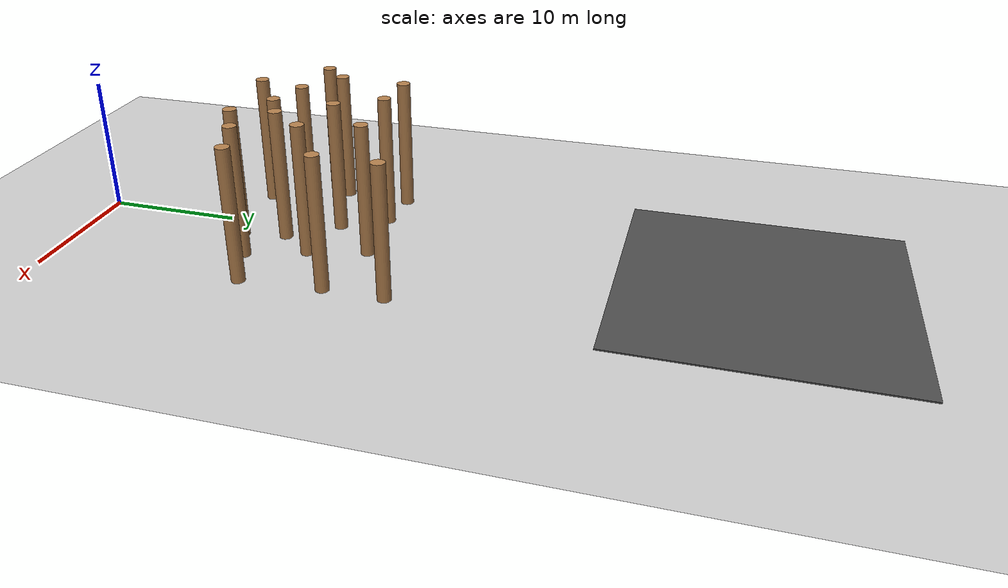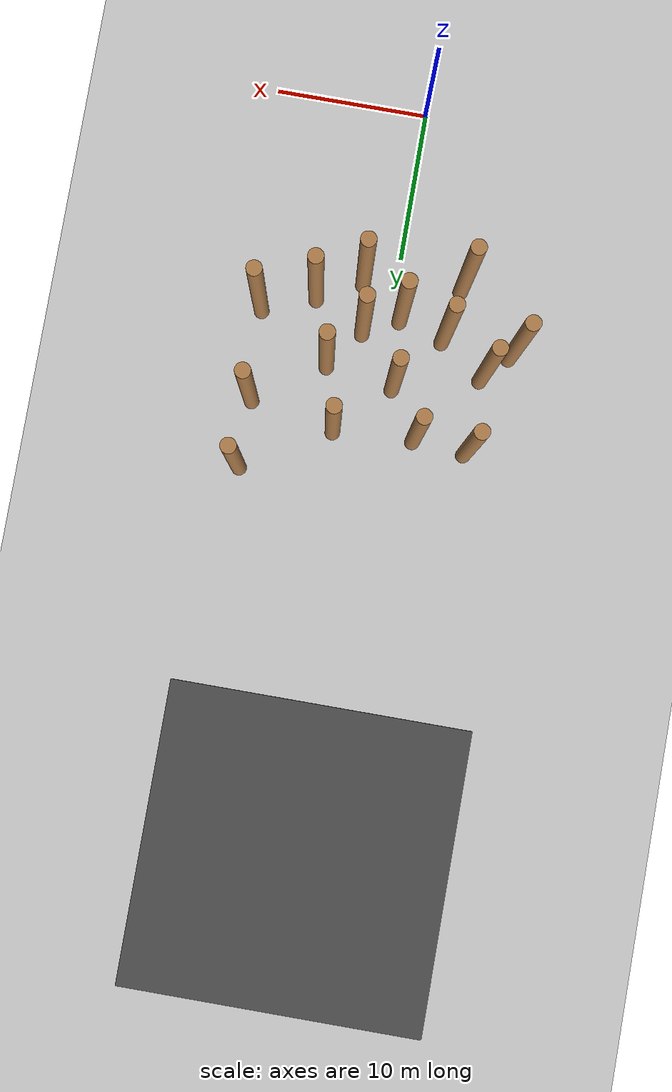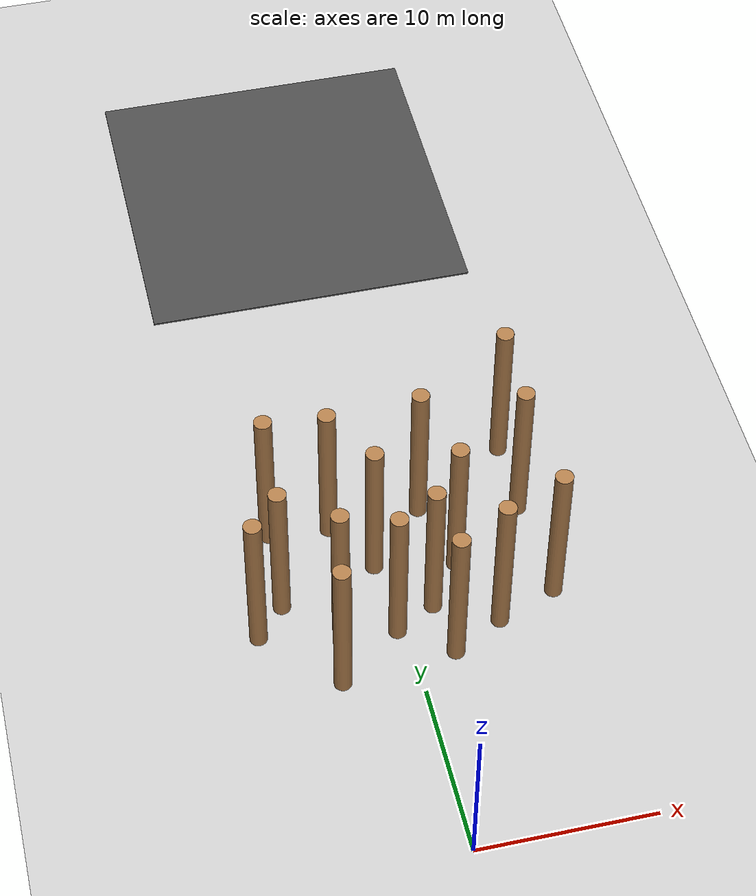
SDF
<sdf version="1.6">
 <world name="default">
  <model name="ground_plane">
   <static>1</static>
   <link name="link">
    <collision name="collision">
     <geometry><plane><normal>0 0 1</normal><size>100 100</size></plane></geometry>
     <surface><friction><ode><mu>100</mu><mu2>50</mu2></ode></friction></surface>
    </collision>
    <visual name="visual">
     <cast_shadows>0</cast_shadows>
     <geometry><plane><normal>0 0 1</normal><size>100 100</size></plane></geometry>
     <material>
      <script><uri>file://media/materials/scripts/gazebo.material</uri><name>Gazebo/Grey</name></script>
     </material>
    </visual>
   </link>
  </model>
  <model name="train">
   <link name="link_0_clone_0_clone">
    <pose>0.652107 -0.074082 0.043478 0 -0 0</pose>
    <inertial>
     <mass>1000</mass>
     <inertia><ixx>0.145833</ixx><ixy>0</ixy><ixz>0</ixz><iyy>0.145833</iyy><iyz>0</iyz><izz>0.125</izz></inertia>
    </inertial>
    <visual name="visual">
     <pose>0 0 4.5 0 -0 0</pose>
     <geometry><cylinder><radius>0.5</radius><length>10</length></cylinder></geometry>
     <material>
      <lighting>1</lighting>
      <script><uri>file://media/materials/scripts/gazebo.material</uri><name>Gazebo/WoodFloor</name></script>
      <ambient>0.3 0.3 0.3 1</ambient>
      <diffuse>0.7 0.7 0.7 1</diffuse>
      <specular>0.01 0.01 0.01 1</specular>
      <emissive>0 0 0 1</emissive>
      <shader type="vertex"><normal_map>__default__</normal_map></shader>
     </material>
    </visual>
    <collision name="collision">
     <pose>0 0 4.5 0 -0 0</pose>
     <geometry><cylinder><radius>0.5</radius><length>10</length></cylinder></geometry>
     <surface>
      <friction>
       <ode><mu>1</mu><mu2>1</mu2><fdir1>0 0 0</fdir1><slip1>0</slip1><slip2>0</slip2></ode>
       <torsional>
        <coefficient>1</coefficient>
        <patch_radius>0</patch_radius>
        <surface_radius>0</surface_radius>
        <use_patch_radius>1</use_patch_radius>
        <ode><slip>0</slip></ode>
       </torsional>
      </friction>
      <bounce><restitution_coefficient>0</restitution_coefficient><threshold>1e+06</threshold></bounce>
      <contact>
       <collide_without_contact>0</collide_without_contact>
       <collide_without_contact_bitmask>1</collide_without_contact_bitmask>
       <collide_bitmask>1</collide_bitmask>
       <ode>
        <soft_cfm>0</soft_cfm>
        <soft_erp>0.2</soft_erp>
        <kp>1e+13</kp>
        <kd>1</kd>
        <max_vel>0.01</max_vel>
        <min_depth>0</min_depth>
       </ode>
       <bullet>
        <split_impulse>1</split_impulse>
        <split_impulse_penetration_threshold>-0.01</split_impulse_penetration_threshold>
        <soft_cfm>0</soft_cfm>
        <soft_erp>0.2</soft_erp>
        <kp>1e+13</kp>
        <kd>1</kd>
       </bullet>
      </contact>
     </surface>
    </collision>
   </link>
   <link name="link_0_clone_0_clone_11_clone_2">
    <pose>6.33865 -0.592893 0.043478 0 -0 3e-06</pose>
    <inertial>
     <mass>1000</mass>
     <inertia><ixx>0.145833</ixx><ixy>0</ixy><ixz>0</ixz><iyy>0.145833</iyy><iyz>0</iyz><izz>0.125</izz></inertia>
    </inertial>
    <visual name="visual">
     <pose>0 0 4.5 0 -0 0</pose>
     <geometry><cylinder><radius>0.5</radius><length>10</length></cylinder></geometry>
     <material>
      <lighting>1</lighting>
      <script><uri>file://media/materials/scripts/gazebo.material</uri><name>Gazebo/WoodFloor</name></script>
      <ambient>0.3 0.3 0.3 1</ambient>
      <diffuse>0.7 0.7 0.7 1</diffuse>
      <specular>0.01 0.01 0.01 1</specular>
      <emissive>0 0 0 1</emissive>
      <shader type="vertex"><normal_map>__default__</normal_map></shader>
     </material>
    </visual>
    <collision name="collision">
     <pose>0 0 4.5 0 -0 0</pose>
     <geometry><cylinder><radius>0.5</radius><length>10</length></cylinder></geometry>
     <surface>
      <friction>
       <ode><mu>1</mu><mu2>1</mu2><fdir1>0 0 0</fdir1><slip1>0</slip1><slip2>0</slip2></ode>
       <torsional>
        <coefficient>1</coefficient>
        <patch_radius>0</patch_radius>
        <surface_radius>0</surface_radius>
        <use_patch_radius>1</use_patch_radius>
        <ode><slip>0</slip></ode>
       </torsional>
      </friction>
      <bounce><restitution_coefficient>0</restitution_coefficient><threshold>1e+06</threshold></bounce>
      <contact>
       <collide_without_contact>0</collide_without_contact>
       <collide_without_contact_bitmask>1</collide_without_contact_bitmask>
       <collide_bitmask>1</collide_bitmask>
       <ode>
        <soft_cfm>0</soft_cfm>
        <soft_erp>0.2</soft_erp>
        <kp>1e+13</kp>
        <kd>1</kd>
        <max_vel>0.01</max_vel>
        <min_depth>0</min_depth>
       </ode>
       <bullet>
        <split_impulse>1</split_impulse>
        <split_impulse_penetration_threshold>-0.01</split_impulse_penetration_threshold>
        <soft_cfm>0</soft_cfm>
        <soft_erp>0.2</soft_erp>
        <kp>1e+13</kp>
        <kd>1</kd>
       </bullet>
      </contact>
     </surface>
    </collision>
   </link>
   <link name="link_0_clone_0_clone_11_clone_25">
    <pose>9.78289 0.753236 0.043478 0 -0 3e-06</pose>
    <inertial>
     <mass>1000</mass>
     <inertia><ixx>0.145833</ixx><ixy>0</ixy><ixz>0</ixz><iyy>0.145833</iyy><iyz>0</iyz><izz>0.125</izz></inertia>
    </inertial>
    <visual name="visual">
     <pose>0 0 4.5 0 -0 0</pose>
     <geometry><cylinder><radius>0.5</radius><length>10</length></cylinder></geometry>
     <material>
      <lighting>1</lighting>
      <script><uri>file://media/materials/scripts/gazebo.material</uri><name>Gazebo/WoodFloor</name></script>
      <ambient>0.3 0.3 0.3 1</ambient>
      <diffuse>0.7 0.7 0.7 1</diffuse>
      <specular>0.01 0.01 0.01 1</specular>
      <emissive>0 0 0 1</emissive>
      <shader type="vertex"><normal_map>__default__</normal_map></shader>
     </material>
    </visual>
    <collision name="collision">
     <pose>0 0 4.5 0 -0 0</pose>
     <geometry><cylinder><radius>0.5</radius><length>10</length></cylinder></geometry>
     <surface>
      <friction>
       <ode><mu>1</mu><mu2>1</mu2><fdir1>0 0 0</fdir1><slip1>0</slip1><slip2>0</slip2></ode>
       <torsional>
        <coefficient>1</coefficient>
        <patch_radius>0</patch_radius>
        <surface_radius>0</surface_radius>
        <use_patch_radius>1</use_patch_radius>
        <ode><slip>0</slip></ode>
       </torsional>
      </friction>
      <bounce><restitution_coefficient>0</restitution_coefficient><threshold>1e+06</threshold></bounce>
      <contact>
       <collide_without_contact>0</collide_without_contact>
       <collide_without_contact_bitmask>1</collide_without_contact_bitmask>
       <collide_bitmask>1</collide_bitmask>
       <ode>
        <soft_cfm>0</soft_cfm>
        <soft_erp>0.2</soft_erp>
        <kp>1e+13</kp>
        <kd>1</kd>
        <max_vel>0.01</max_vel>
        <min_depth>0</min_depth>
       </ode>
       <bullet>
        <split_impulse>1</split_impulse>
        <split_impulse_penetration_threshold>-0.01</split_impulse_penetration_threshold>
        <soft_cfm>0</soft_cfm>
        <soft_erp>0.2</soft_erp>
        <kp>1e+13</kp>
        <kd>1</kd>
       </bullet>
      </contact>
     </surface>
    </collision>
   </link>
   <link name="link_0_clone_0_clone_11_clone_3">
    <pose>9.37408 6.83632 0.043478 0 -0 3e-06</pose>
    <inertial>
     <mass>1000</mass>
     <inertia><ixx>0.145833</ixx><ixy>0</ixy><ixz>0</ixz><iyy>0.145833</iyy><iyz>0</iyz><izz>0.125</izz></inertia>
    </inertial>
    <visual name="visual">
     <pose>0 0 4.5 0 -0 0</pose>
     <geometry><cylinder><radius>0.5</radius><length>10</length></cylinder></geometry>
     <material>
      <lighting>1</lighting>
      <script><uri>file://media/materials/scripts/gazebo.material</uri><name>Gazebo/WoodFloor</name></script>
      <ambient>0.3 0.3 0.3 1</ambient>
      <diffuse>0.7 0.7 0.7 1</diffuse>
      <specular>0.01 0.01 0.01 1</specular>
      <emissive>0 0 0 1</emissive>
      <shader type="vertex"><normal_map>__default__</normal_map></shader>
     </material>
    </visual>
    <collision name="collision">
     <pose>0 0 4.5 0 -0 0</pose>
     <geometry><cylinder><radius>0.5</radius><length>10</length></cylinder></geometry>
     <surface>
      <friction>
       <ode><mu>1</mu><mu2>1</mu2><fdir1>0 0 0</fdir1><slip1>0</slip1><slip2>0</slip2></ode>
       <torsional>
        <coefficient>1</coefficient>
        <patch_radius>0</patch_radius>
        <surface_radius>0</surface_radius>
        <use_patch_radius>1</use_patch_radius>
        <ode><slip>0</slip></ode>
       </torsional>
      </friction>
      <bounce><restitution_coefficient>0</restitution_coefficient><threshold>1e+06</threshold></bounce>
      <contact>
       <collide_without_contact>0</collide_without_contact>
       <collide_without_contact_bitmask>1</collide_without_contact_bitmask>
       <collide_bitmask>1</collide_bitmask>
       <ode>
        <soft_cfm>0</soft_cfm>
        <soft_erp>0.2</soft_erp>
        <kp>1e+13</kp>
        <kd>1</kd>
        <max_vel>0.01</max_vel>
        <min_depth>0</min_depth>
       </ode>
       <bullet>
        <split_impulse>1</split_impulse>
        <split_impulse_penetration_threshold>-0.01</split_impulse_penetration_threshold>
        <soft_cfm>0</soft_cfm>
        <soft_erp>0.2</soft_erp>
        <kp>1e+13</kp>
        <kd>1</kd>
       </bullet>
      </contact>
     </surface>
    </collision>
   </link>
   <link name="link_0_clone_0_clone_11_clone_5">
    <pose>9.42386 11.3308 0.043478 0 -0 3e-06</pose>
    <inertial>
     <mass>1000</mass>
     <inertia><ixx>0.145833</ixx><ixy>0</ixy><ixz>0</ixz><iyy>0.145833</iyy><iyz>0</iyz><izz>0.125</izz></inertia>
    </inertial>
    <visual name="visual">
     <pose>0 0 4.5 0 -0 0</pose>
     <geometry><cylinder><radius>0.5</radius><length>10</length></cylinder></geometry>
     <material>
      <lighting>1</lighting>
      <script><uri>file://media/materials/scripts/gazebo.material</uri><name>Gazebo/WoodFloor</name></script>
      <ambient>0.3 0.3 0.3 1</ambient>
      <diffuse>0.7 0.7 0.7 1</diffuse>
      <specular>0.01 0.01 0.01 1</specular>
      <emissive>0 0 0 1</emissive>
      <shader type="vertex"><normal_map>__default__</normal_map></shader>
     </material>
    </visual>
    <collision name="collision">
     <pose>0 0 4.5 0 -0 0</pose>
     <geometry><cylinder><radius>0.5</radius><length>10</length></cylinder></geometry>
     <surface>
      <friction>
       <ode><mu>1</mu><mu2>1</mu2><fdir1>0 0 0</fdir1><slip1>0</slip1><slip2>0</slip2></ode>
       <torsional>
        <coefficient>1</coefficient>
        <patch_radius>0</patch_radius>
        <surface_radius>0</surface_radius>
        <use_patch_radius>1</use_patch_radius>
        <ode><slip>0</slip></ode>
       </torsional>
      </friction>
      <bounce><restitution_coefficient>0</restitution_coefficient><threshold>1e+06</threshold></bounce>
      <contact>
       <collide_without_contact>0</collide_without_contact>
       <collide_without_contact_bitmask>1</collide_without_contact_bitmask>
       <collide_bitmask>1</collide_bitmask>
       <ode>
        <soft_cfm>0</soft_cfm>
        <soft_erp>0.2</soft_erp>
        <kp>1e+13</kp>
        <kd>1</kd>
        <max_vel>0.01</max_vel>
        <min_depth>0</min_depth>
       </ode>
       <bullet>
        <split_impulse>1</split_impulse>
        <split_impulse_penetration_threshold>-0.01</split_impulse_penetration_threshold>
        <soft_cfm>0</soft_cfm>
        <soft_erp>0.2</soft_erp>
        <kp>1e+13</kp>
        <kd>1</kd>
       </bullet>
      </contact>
     </surface>
    </collision>
   </link>
   <link name="link_0_clone_0_clone_11_clone_8">
    <pose>-6.90192 1.15105 0.043478 0 -0 3e-06</pose>
    <inertial>
     <mass>1000</mass>
     <inertia><ixx>0.145833</ixx><ixy>0</ixy><ixz>0</ixz><iyy>0.145833</iyy><iyz>0</iyz><izz>0.125</izz></inertia>
    </inertial>
    <visual name="visual">
     <pose>0 0 4.5 0 -0 0</pose>
     <geometry><cylinder><radius>0.5</radius><length>10</length></cylinder></geometry>
     <material>
      <lighting>1</lighting>
      <script><uri>file://media/materials/scripts/gazebo.material</uri><name>Gazebo/WoodFloor</name></script>
      <ambient>0.3 0.3 0.3 1</ambient>
      <diffuse>0.7 0.7 0.7 1</diffuse>
      <specular>0.01 0.01 0.01 1</specular>
      <emissive>0 0 0 1</emissive>
      <shader type="vertex"><normal_map>__default__</normal_map></shader>
     </material>
    </visual>
    <collision name="collision">
     <pose>0 0 4.5 0 -0 0</pose>
     <geometry><cylinder><radius>0.5</radius><length>10</length></cylinder></geometry>
     <surface>
      <friction>
       <ode><mu>1</mu><mu2>1</mu2><fdir1>0 0 0</fdir1><slip1>0</slip1><slip2>0</slip2></ode>
       <torsional>
        <coefficient>1</coefficient>
        <patch_radius>0</patch_radius>
        <surface_radius>0</surface_radius>
        <use_patch_radius>1</use_patch_radius>
        <ode><slip>0</slip></ode>
       </torsional>
      </friction>
      <bounce><restitution_coefficient>0</restitution_coefficient><threshold>1e+06</threshold></bounce>
      <contact>
       <collide_without_contact>0</collide_without_contact>
       <collide_without_contact_bitmask>1</collide_without_contact_bitmask>
       <collide_bitmask>1</collide_bitmask>
       <ode>
        <soft_cfm>0</soft_cfm>
        <soft_erp>0.2</soft_erp>
        <kp>1e+13</kp>
        <kd>1</kd>
        <max_vel>0.01</max_vel>
        <min_depth>0</min_depth>
       </ode>
       <bullet>
        <split_impulse>1</split_impulse>
        <split_impulse_penetration_threshold>-0.01</split_impulse_penetration_threshold>
        <soft_cfm>0</soft_cfm>
        <soft_erp>0.2</soft_erp>
        <kp>1e+13</kp>
        <kd>1</kd>
       </bullet>
      </contact>
     </surface>
    </collision>
   </link>
   <link name="link_0_clone_0_clone_12">
    <pose>-5.23649 2.93294 0.043478 0 -0 0</pose>
    <inertial>
     <mass>1000</mass>
     <inertia><ixx>0.145833</ixx><ixy>0</ixy><ixz>0</ixz><iyy>0.145833</iyy><iyz>0</iyz><izz>0.125</izz></inertia>
    </inertial>
    <visual name="visual">
     <pose>0 0 4.5 0 -0 0</pose>
     <geometry><cylinder><radius>0.5</radius><length>10</length></cylinder></geometry>
     <material>
      <lighting>1</lighting>
      <script><uri>file://media/materials/scripts/gazebo.material</uri><name>Gazebo/WoodFloor</name></script>
      <ambient>0.3 0.3 0.3 1</ambient>
      <diffuse>0.7 0.7 0.7 1</diffuse>
      <specular>0.01 0.01 0.01 1</specular>
      <emissive>0 0 0 1</emissive>
      <shader type="vertex"><normal_map>__default__</normal_map></shader>
     </material>
    </visual>
    <collision name="collision">
     <pose>0 0 4.5 0 -0 0</pose>
     <geometry><cylinder><radius>0.5</radius><length>10</length></cylinder></geometry>
     <surface>
      <friction>
       <ode><mu>1</mu><mu2>1</mu2><fdir1>0 0 0</fdir1><slip1>0</slip1><slip2>0</slip2></ode>
       <torsional>
        <coefficient>1</coefficient>
        <patch_radius>0</patch_radius>
        <surface_radius>0</surface_radius>
        <use_patch_radius>1</use_patch_radius>
        <ode><slip>0</slip></ode>
       </torsional>
      </friction>
      <bounce><restitution_coefficient>0</restitution_coefficient><threshold>1e+06</threshold></bounce>
      <contact>
       <collide_without_contact>0</collide_without_contact>
       <collide_without_contact_bitmask>1</collide_without_contact_bitmask>
       <collide_bitmask>1</collide_bitmask>
       <ode>
        <soft_cfm>0</soft_cfm>
        <soft_erp>0.2</soft_erp>
        <kp>1e+13</kp>
        <kd>1</kd>
        <max_vel>0.01</max_vel>
        <min_depth>0</min_depth>
       </ode>
       <bullet>
        <split_impulse>1</split_impulse>
        <split_impulse_penetration_threshold>-0.01</split_impulse_penetration_threshold>
        <soft_cfm>0</soft_cfm>
        <soft_erp>0.2</soft_erp>
        <kp>1e+13</kp>
        <kd>1</kd>
       </bullet>
      </contact>
     </surface>
    </collision>
   </link>
   <link name="link_0_clone_0_clone_13">
    <pose>-4.99838 7.98683 0.043478 0 -0 0</pose>
    <inertial>
     <mass>1000</mass>
     <inertia><ixx>0.145833</ixx><ixy>0</ixy><ixz>0</ixz><iyy>0.145833</iyy><iyz>0</iyz><izz>0.125</izz></inertia>
    </inertial>
    <visual name="visual">
     <pose>0 0 4.5 0 -0 0</pose>
     <geometry><cylinder><radius>0.5</radius><length>10</length></cylinder></geometry>
     <material>
      <lighting>1</lighting>
      <script><uri>file://media/materials/scripts/gazebo.material</uri><name>Gazebo/WoodFloor</name></script>
      <ambient>0.3 0.3 0.3 1</ambient>
      <diffuse>0.7 0.7 0.7 1</diffuse>
      <specular>0.01 0.01 0.01 1</specular>
      <emissive>0 0 0 1</emissive>
      <shader type="vertex"><normal_map>__default__</normal_map></shader>
     </material>
    </visual>
    <collision name="collision">
     <pose>0 0 4.5 0 -0 0</pose>
     <geometry><cylinder><radius>0.5</radius><length>10</length></cylinder></geometry>
     <surface>
      <friction>
       <ode><mu>1</mu><mu2>1</mu2><fdir1>0 0 0</fdir1><slip1>0</slip1><slip2>0</slip2></ode>
       <torsional>
        <coefficient>1</coefficient>
        <patch_radius>0</patch_radius>
        <surface_radius>0</surface_radius>
        <use_patch_radius>1</use_patch_radius>
        <ode><slip>0</slip></ode>
       </torsional>
      </friction>
      <bounce><restitution_coefficient>0</restitution_coefficient><threshold>1e+06</threshold></bounce>
      <contact>
       <collide_without_contact>0</collide_without_contact>
       <collide_without_contact_bitmask>1</collide_without_contact_bitmask>
       <collide_bitmask>1</collide_bitmask>
       <ode>
        <soft_cfm>0</soft_cfm>
        <soft_erp>0.2</soft_erp>
        <kp>1e+13</kp>
        <kd>1</kd>
        <max_vel>0.01</max_vel>
        <min_depth>0</min_depth>
       </ode>
       <bullet>
        <split_impulse>1</split_impulse>
        <split_impulse_penetration_threshold>-0.01</split_impulse_penetration_threshold>
        <soft_cfm>0</soft_cfm>
        <soft_erp>0.2</soft_erp>
        <kp>1e+13</kp>
        <kd>1</kd>
       </bullet>
      </contact>
     </surface>
    </collision>
   </link>
   <link name="link_0_clone_0_clone_14">
    <pose>-1.5389 7.6959 0.043478 0 -0 0</pose>
    <inertial>
     <mass>1000</mass>
     <inertia><ixx>0.145833</ixx><ixy>0</ixy><ixz>0</ixz><iyy>0.145833</iyy><iyz>0</iyz><izz>0.125</izz></inertia>
    </inertial>
    <visual name="visual">
     <pose>0 0 4.5 0 -0 0</pose>
     <geometry><cylinder><radius>0.5</radius><length>10</length></cylinder></geometry>
     <material>
      <lighting>1</lighting>
      <script><uri>file://media/materials/scripts/gazebo.material</uri><name>Gazebo/WoodFloor</name></script>
      <ambient>0.3 0.3 0.3 1</ambient>
      <diffuse>0.7 0.7 0.7 1</diffuse>
      <specular>0.01 0.01 0.01 1</specular>
      <emissive>0 0 0 1</emissive>
      <shader type="vertex"><normal_map>__default__</normal_map></shader>
     </material>
    </visual>
    <collision name="collision">
     <pose>0 0 4.5 0 -0 0</pose>
     <geometry><cylinder><radius>0.5</radius><length>10</length></cylinder></geometry>
     <surface>
      <friction>
       <ode><mu>1</mu><mu2>1</mu2><fdir1>0 0 0</fdir1><slip1>0</slip1><slip2>0</slip2></ode>
       <torsional>
        <coefficient>1</coefficient>
        <patch_radius>0</patch_radius>
        <surface_radius>0</surface_radius>
        <use_patch_radius>1</use_patch_radius>
        <ode><slip>0</slip></ode>
       </torsional>
      </friction>
      <bounce><restitution_coefficient>0</restitution_coefficient><threshold>1e+06</threshold></bounce>
      <contact>
       <collide_without_contact>0</collide_without_contact>
       <collide_without_contact_bitmask>1</collide_without_contact_bitmask>
       <collide_bitmask>1</collide_bitmask>
       <ode>
        <soft_cfm>0</soft_cfm>
        <soft_erp>0.2</soft_erp>
        <kp>1e+13</kp>
        <kd>1</kd>
        <max_vel>0.01</max_vel>
        <min_depth>0</min_depth>
       </ode>
       <bullet>
        <split_impulse>1</split_impulse>
        <split_impulse_penetration_threshold>-0.01</split_impulse_penetration_threshold>
        <soft_cfm>0</soft_cfm>
        <soft_erp>0.2</soft_erp>
        <kp>1e+13</kp>
        <kd>1</kd>
       </bullet>
      </contact>
     </surface>
    </collision>
   </link>
   <link name="link_0_clone_0_clone_15">
    <pose>3.75773 7.96734 0.043478 0 -0 0</pose>
    <inertial>
     <mass>1000</mass>
     <inertia><ixx>0.145833</ixx><ixy>0</ixy><ixz>0</ixz><iyy>0.145833</iyy><iyz>0</iyz><izz>0.125</izz></inertia>
    </inertial>
    <visual name="visual">
     <pose>0 0 4.5 0 -0 0</pose>
     <geometry><cylinder><radius>0.5</radius><length>10</length></cylinder></geometry>
     <material>
      <lighting>1</lighting>
      <script><uri>file://media/materials/scripts/gazebo.material</uri><name>Gazebo/WoodFloor</name></script>
      <ambient>0.3 0.3 0.3 1</ambient>
      <diffuse>0.7 0.7 0.7 1</diffuse>
      <specular>0.01 0.01 0.01 1</specular>
      <emissive>0 0 0 1</emissive>
      <shader type="vertex"><normal_map>__default__</normal_map></shader>
     </material>
    </visual>
    <collision name="collision">
     <pose>0 0 4.5 0 -0 0</pose>
     <geometry><cylinder><radius>0.5</radius><length>10</length></cylinder></geometry>
     <surface>
      <friction>
       <ode><mu>1</mu><mu2>1</mu2><fdir1>0 0 0</fdir1><slip1>0</slip1><slip2>0</slip2></ode>
       <torsional>
        <coefficient>1</coefficient>
        <patch_radius>0</patch_radius>
        <surface_radius>0</surface_radius>
        <use_patch_radius>1</use_patch_radius>
        <ode><slip>0</slip></ode>
       </torsional>
      </friction>
      <bounce><restitution_coefficient>0</restitution_coefficient><threshold>1e+06</threshold></bounce>
      <contact>
       <collide_without_contact>0</collide_without_contact>
       <collide_without_contact_bitmask>1</collide_without_contact_bitmask>
       <collide_bitmask>1</collide_bitmask>
       <ode>
        <soft_cfm>0</soft_cfm>
        <soft_erp>0.2</soft_erp>
        <kp>1e+13</kp>
        <kd>1</kd>
        <max_vel>0.01</max_vel>
        <min_depth>0</min_depth>
       </ode>
       <bullet>
        <split_impulse>1</split_impulse>
        <split_impulse_penetration_threshold>-0.01</split_impulse_penetration_threshold>
        <soft_cfm>0</soft_cfm>
        <soft_erp>0.2</soft_erp>
        <kp>1e+13</kp>
        <kd>1</kd>
       </bullet>
      </contact>
     </surface>
    </collision>
   </link>
   <link name="link_0_clone_0_clone_3">
    <pose>-3.01675 -2.7591 0.043478 0 -0 0</pose>
    <inertial>
     <mass>1000</mass>
     <inertia><ixx>0.145833</ixx><ixy>0</ixy><ixz>0</ixz><iyy>0.145833</iyy><iyz>0</iyz><izz>0.125</izz></inertia>
    </inertial>
    <visual name="visual">
     <pose>0 0 4.5 0 -0 0</pose>
     <geometry><cylinder><radius>0.5</radius><length>10</length></cylinder></geometry>
     <material>
      <lighting>1</lighting>
      <script><uri>file://media/materials/scripts/gazebo.material</uri><name>Gazebo/WoodFloor</name></script>
      <ambient>0.3 0.3 0.3 1</ambient>
      <diffuse>0.7 0.7 0.7 1</diffuse>
      <specular>0.01 0.01 0.01 1</specular>
      <emissive>0 0 0 1</emissive>
      <shader type="vertex"><normal_map>__default__</normal_map></shader>
     </material>
    </visual>
    <collision name="collision">
     <pose>0 0 4.5 0 -0 0</pose>
     <geometry><cylinder><radius>0.5</radius><length>10</length></cylinder></geometry>
     <surface>
      <friction>
       <ode><mu>1</mu><mu2>1</mu2><fdir1>0 0 0</fdir1><slip1>0</slip1><slip2>0</slip2></ode>
       <torsional>
        <coefficient>1</coefficient>
        <patch_radius>0</patch_radius>
        <surface_radius>0</surface_radius>
        <use_patch_radius>1</use_patch_radius>
        <ode><slip>0</slip></ode>
       </torsional>
      </friction>
      <bounce><restitution_coefficient>0</restitution_coefficient><threshold>1e+06</threshold></bounce>
      <contact>
       <collide_without_contact>0</collide_without_contact>
       <collide_without_contact_bitmask>1</collide_without_contact_bitmask>
       <collide_bitmask>1</collide_bitmask>
       <ode>
        <soft_cfm>0</soft_cfm>
        <soft_erp>0.2</soft_erp>
        <kp>1e+13</kp>
        <kd>1</kd>
        <max_vel>0.01</max_vel>
        <min_depth>0</min_depth>
       </ode>
       <bullet>
        <split_impulse>1</split_impulse>
        <split_impulse_penetration_threshold>-0.01</split_impulse_penetration_threshold>
        <soft_cfm>0</soft_cfm>
        <soft_erp>0.2</soft_erp>
        <kp>1e+13</kp>
        <kd>1</kd>
       </bullet>
      </contact>
     </surface>
    </collision>
   </link>
   <link name="link_0_clone_0_clone_4">
    <pose>4.8963 3.74868 0.043478 0 -0 0</pose>
    <inertial>
     <mass>1000</mass>
     <inertia><ixx>0.145833</ixx><ixy>0</ixy><ixz>0</ixz><iyy>0.145833</iyy><iyz>0</iyz><izz>0.125</izz></inertia>
    </inertial>
    <visual name="visual">
     <pose>0 0 4.5 0 -0 0</pose>
     <geometry><cylinder><radius>0.5</radius><length>10</length></cylinder></geometry>
     <material>
      <lighting>1</lighting>
      <script><uri>file://media/materials/scripts/gazebo.material</uri><name>Gazebo/WoodFloor</name></script>
      <ambient>0.3 0.3 0.3 1</ambient>
      <diffuse>0.7 0.7 0.7 1</diffuse>
      <specular>0.01 0.01 0.01 1</specular>
      <emissive>0 0 0 1</emissive>
      <shader type="vertex"><normal_map>__default__</normal_map></shader>
     </material>
    </visual>
    <collision name="collision">
     <pose>0 0 4.5 0 -0 0</pose>
     <geometry><cylinder><radius>0.5</radius><length>10</length></cylinder></geometry>
     <surface>
      <friction>
       <ode><mu>1</mu><mu2>1</mu2><fdir1>0 0 0</fdir1><slip1>0</slip1><slip2>0</slip2></ode>
       <torsional>
        <coefficient>1</coefficient>
        <patch_radius>0</patch_radius>
        <surface_radius>0</surface_radius>
        <use_patch_radius>1</use_patch_radius>
        <ode><slip>0</slip></ode>
       </torsional>
      </friction>
      <bounce><restitution_coefficient>0</restitution_coefficient><threshold>1e+06</threshold></bounce>
      <contact>
       <collide_without_contact>0</collide_without_contact>
       <collide_without_contact_bitmask>1</collide_without_contact_bitmask>
       <collide_bitmask>1</collide_bitmask>
       <ode>
        <soft_cfm>0</soft_cfm>
        <soft_erp>0.2</soft_erp>
        <kp>1e+13</kp>
        <kd>1</kd>
        <max_vel>0.01</max_vel>
        <min_depth>0</min_depth>
       </ode>
       <bullet>
        <split_impulse>1</split_impulse>
        <split_impulse_penetration_threshold>-0.01</split_impulse_penetration_threshold>
        <soft_cfm>0</soft_cfm>
        <soft_erp>0.2</soft_erp>
        <kp>1e+13</kp>
        <kd>1</kd>
       </bullet>
      </contact>
     </surface>
    </collision>
   </link>
   <link name="link_0_clone_0_clone_5">
    <pose>0.389912 4.52116 0.043478 0 -0 0</pose>
    <inertial>
     <mass>1000</mass>
     <inertia><ixx>0.145833</ixx><ixy>0</ixy><ixz>0</ixz><iyy>0.145833</iyy><iyz>0</iyz><izz>0.125</izz></inertia>
    </inertial>
    <visual name="visual">
     <pose>0 0 4.5 0 -0 0</pose>
     <geometry><cylinder><radius>0.5</radius><length>10</length></cylinder></geometry>
     <material>
      <lighting>1</lighting>
      <script><uri>file://media/materials/scripts/gazebo.material</uri><name>Gazebo/WoodFloor</name></script>
      <ambient>0.3 0.3 0.3 1</ambient>
      <diffuse>0.7 0.7 0.7 1</diffuse>
      <specular>0.01 0.01 0.01 1</specular>
      <emissive>0 0 0 1</emissive>
      <shader type="vertex"><normal_map>__default__</normal_map></shader>
     </material>
    </visual>
    <collision name="collision">
     <pose>0 0 4.5 0 -0 0</pose>
     <geometry><cylinder><radius>0.5</radius><length>10</length></cylinder></geometry>
     <surface>
      <friction>
       <ode><mu>1</mu><mu2>1</mu2><fdir1>0 0 0</fdir1><slip1>0</slip1><slip2>0</slip2></ode>
       <torsional>
        <coefficient>1</coefficient>
        <patch_radius>0</patch_radius>
        <surface_radius>0</surface_radius>
        <use_patch_radius>1</use_patch_radius>
        <ode><slip>0</slip></ode>
       </torsional>
      </friction>
      <bounce><restitution_coefficient>0</restitution_coefficient><threshold>1e+06</threshold></bounce>
      <contact>
       <collide_without_contact>0</collide_without_contact>
       <collide_without_contact_bitmask>1</collide_without_contact_bitmask>
       <collide_bitmask>1</collide_bitmask>
       <ode>
        <soft_cfm>0</soft_cfm>
        <soft_erp>0.2</soft_erp>
        <kp>1e+13</kp>
        <kd>1</kd>
        <max_vel>0.01</max_vel>
        <min_depth>0</min_depth>
       </ode>
       <bullet>
        <split_impulse>1</split_impulse>
        <split_impulse_penetration_threshold>-0.01</split_impulse_penetration_threshold>
        <soft_cfm>0</soft_cfm>
        <soft_erp>0.2</soft_erp>
        <kp>1e+13</kp>
        <kd>1</kd>
       </bullet>
      </contact>
     </surface>
    </collision>
   </link>
   <link name="link_0_clone_0_clone_6">
    <pose>-2.32714 0.83153 0.043478 0 -0 0</pose>
    <inertial>
     <mass>1000</mass>
     <inertia><ixx>0.145833</ixx><ixy>0</ixy><ixz>0</ixz><iyy>0.145833</iyy><iyz>0</iyz><izz>0.125</izz></inertia>
    </inertial>
    <visual name="visual">
     <pose>0 0 4.5 0 -0 0</pose>
     <geometry><cylinder><radius>0.5</radius><length>10</length></cylinder></geometry>
     <material>
      <lighting>1</lighting>
      <script><uri>file://media/materials/scripts/gazebo.material</uri><name>Gazebo/WoodFloor</name></script>
      <ambient>0.3 0.3 0.3 1</ambient>
      <diffuse>0.7 0.7 0.7 1</diffuse>
      <specular>0.01 0.01 0.01 1</specular>
      <emissive>0 0 0 1</emissive>
      <shader type="vertex"><normal_map>__default__</normal_map></shader>
     </material>
    </visual>
    <collision name="collision">
     <pose>0 0 4.5 0 -0 0</pose>
     <geometry><cylinder><radius>0.5</radius><length>10</length></cylinder></geometry>
     <surface>
      <friction>
       <ode><mu>1</mu><mu2>1</mu2><fdir1>0 0 0</fdir1><slip1>0</slip1><slip2>0</slip2></ode>
       <torsional>
        <coefficient>1</coefficient>
        <patch_radius>0</patch_radius>
        <surface_radius>0</surface_radius>
        <use_patch_radius>1</use_patch_radius>
        <ode><slip>0</slip></ode>
       </torsional>
      </friction>
      <bounce><restitution_coefficient>0</restitution_coefficient><threshold>1e+06</threshold></bounce>
      <contact>
       <collide_without_contact>0</collide_without_contact>
       <collide_without_contact_bitmask>1</collide_without_contact_bitmask>
       <collide_bitmask>1</collide_bitmask>
       <ode>
        <soft_cfm>0</soft_cfm>
        <soft_erp>0.2</soft_erp>
        <kp>1e+13</kp>
        <kd>1</kd>
        <max_vel>0.01</max_vel>
        <min_depth>0</min_depth>
       </ode>
       <bullet>
        <split_impulse>1</split_impulse>
        <split_impulse_penetration_threshold>-0.01</split_impulse_penetration_threshold>
        <soft_cfm>0</soft_cfm>
        <soft_erp>0.2</soft_erp>
        <kp>1e+13</kp>
        <kd>1</kd>
       </bullet>
      </contact>
     </surface>
    </collision>
   </link>
   <link name="link_0_clone_0_clone_7">
    <pose>2.96146 1.16575 0.043478 0 -0 0</pose>
    <inertial>
     <mass>1000</mass>
     <inertia><ixx>0.145833</ixx><ixy>0</ixy><ixz>0</ixz><iyy>0.145833</iyy><iyz>0</iyz><izz>0.125</izz></inertia>
    </inertial>
    <visual name="visual">
     <pose>0 0 4.5 0 -0 0</pose>
     <geometry><cylinder><radius>0.5</radius><length>10</length></cylinder></geometry>
     <material>
      <lighting>1</lighting>
      <script><uri>file://media/materials/scripts/gazebo.material</uri><name>Gazebo/WoodFloor</name></script>
      <ambient>0.3 0.3 0.3 1</ambient>
      <diffuse>0.7 0.7 0.7 1</diffuse>
      <specular>0.01 0.01 0.01 1</specular>
      <emissive>0 0 0 1</emissive>
      <shader type="vertex"><normal_map>__default__</normal_map></shader>
     </material>
    </visual>
    <collision name="collision">
     <pose>0 0 4.5 0 -0 0</pose>
     <geometry><cylinder><radius>0.5</radius><length>10</length></cylinder></geometry>
     <surface>
      <friction>
       <ode><mu>1</mu><mu2>1</mu2><fdir1>0 0 0</fdir1><slip1>0</slip1><slip2>0</slip2></ode>
       <torsional>
        <coefficient>1</coefficient>
        <patch_radius>0</patch_radius>
        <surface_radius>0</surface_radius>
        <use_patch_radius>1</use_patch_radius>
        <ode><slip>0</slip></ode>
       </torsional>
      </friction>
      <bounce><restitution_coefficient>0</restitution_coefficient><threshold>1e+06</threshold></bounce>
      <contact>
       <collide_without_contact>0</collide_without_contact>
       <collide_without_contact_bitmask>1</collide_without_contact_bitmask>
       <collide_bitmask>1</collide_bitmask>
       <ode>
        <soft_cfm>0</soft_cfm>
        <soft_erp>0.2</soft_erp>
        <kp>1e+13</kp>
        <kd>1</kd>
        <max_vel>0.01</max_vel>
        <min_depth>0</min_depth>
       </ode>
       <bullet>
        <split_impulse>1</split_impulse>
        <split_impulse_penetration_threshold>-0.01</split_impulse_penetration_threshold>
        <soft_cfm>0</soft_cfm>
        <soft_erp>0.2</soft_erp>
        <kp>1e+13</kp>
        <kd>1</kd>
       </bullet>
      </contact>
     </surface>
    </collision>
   </link>
   <link name="link_0_clone_0_clone_8">
    <pose>3.44726 -2.11442 0.043478 0 -0 0</pose>
    <inertial>
     <mass>1000</mass>
     <inertia><ixx>0.145833</ixx><ixy>0</ixy><ixz>0</ixz><iyy>0.145833</iyy><iyz>0</iyz><izz>0.125</izz></inertia>
    </inertial>
    <visual name="visual">
     <pose>0 0 4.5 0 -0 0</pose>
     <geometry><cylinder><radius>0.5</radius><length>10</length></cylinder></geometry>
     <material>
      <lighting>1</lighting>
      <script><uri>file://media/materials/scripts/gazebo.material</uri><name>Gazebo/WoodFloor</name></script>
      <ambient>0.3 0.3 0.3 1</ambient>
      <diffuse>0.7 0.7 0.7 1</diffuse>
      <specular>0.01 0.01 0.01 1</specular>
      <emissive>0 0 0 1</emissive>
      <shader type="vertex"><normal_map>__default__</normal_map></shader>
     </material>
    </visual>
    <collision name="collision">
     <pose>0 0 4.5 0 -0 0</pose>
     <geometry><cylinder><radius>0.5</radius><length>10</length></cylinder></geometry>
     <surface>
      <friction>
       <ode><mu>1</mu><mu2>1</mu2><fdir1>0 0 0</fdir1><slip1>0</slip1><slip2>0</slip2></ode>
       <torsional>
        <coefficient>1</coefficient>
        <patch_radius>0</patch_radius>
        <surface_radius>0</surface_radius>
        <use_patch_radius>1</use_patch_radius>
        <ode><slip>0</slip></ode>
       </torsional>
      </friction>
      <bounce><restitution_coefficient>0</restitution_coefficient><threshold>1e+06</threshold></bounce>
      <contact>
       <collide_without_contact>0</collide_without_contact>
       <collide_without_contact_bitmask>1</collide_without_contact_bitmask>
       <collide_bitmask>1</collide_bitmask>
       <ode>
        <soft_cfm>0</soft_cfm>
        <soft_erp>0.2</soft_erp>
        <kp>1e+13</kp>
        <kd>1</kd>
        <max_vel>0.01</max_vel>
        <min_depth>0</min_depth>
       </ode>
       <bullet>
        <split_impulse>1</split_impulse>
        <split_impulse_penetration_threshold>-0.01</split_impulse_penetration_threshold>
        <soft_cfm>0</soft_cfm>
        <soft_erp>0.2</soft_erp>
        <kp>1e+13</kp>
        <kd>1</kd>
       </bullet>
      </contact>
     </surface>
    </collision>
   </link>
   <static>1</static>
   <pose>-1.27394 14.2468 0.506522 0 0 -3e-06</pose>
  </model>
  <model name="asphalt_plane">
   <link name="link">
    <inertial>
     <mass>1</mass>
     <inertia><ixx>1</ixx><ixy>0</ixy><ixz>0</ixz><iyy>1</iyy><iyz>0</iyz><izz>1</izz></inertia>
    </inertial>
    <visual name="visual">
     <cast_shadows>0</cast_shadows>
     <geometry><box><size>20 20 0.1</size></box></geometry>
     <material>
      <script>
       <uri>model://asphalt_plane/materials/scripts</uri>
       <uri>model://asphalt_plane/materials/textures</uri>
       <name>vrc/asphalt</name>
      </script>
      <ambient>0.5 0.5 0.5 1</ambient>
      <diffuse>0.5 0.5 0.5 1</diffuse>
      <specular>0.2 0.2 0.2 1</specular>
      <emissive>0 0 0 1</emissive>
      <shader type="vertex"><normal_map>__default__</normal_map></shader>
     </material>
    </visual>
    <collision name="collision">
     <geometry><box><size>20 20 0.1</size></box></geometry>
     <surface>
      <friction>
       <ode><mu>1</mu><mu2>1</mu2><fdir1>0 0 0</fdir1><slip1>0</slip1><slip2>0</slip2></ode>
       <torsional>
        <coefficient>1</coefficient>
        <patch_radius>0</patch_radius>
        <surface_radius>0</surface_radius>
        <use_patch_radius>1</use_patch_radius>
        <ode><slip>0</slip></ode>
       </torsional>
      </friction>
      <bounce><restitution_coefficient>0</restitution_coefficient><threshold>1e+06</threshold></bounce>
      <contact>
       <collide_without_contact>0</collide_without_contact>
       <collide_without_contact_bitmask>1</collide_without_contact_bitmask>
       <collide_bitmask>1</collide_bitmask>
       <ode>
        <soft_cfm>0</soft_cfm>
        <soft_erp>0.2</soft_erp>
        <kp>1e+13</kp>
        <kd>1</kd>
        <max_vel>0.01</max_vel>
        <min_depth>0</min_depth>
       </ode>
       <bullet>
        <split_impulse>1</split_impulse>
        <split_impulse_penetration_threshold>-0.01</split_impulse_penetration_threshold>
        <soft_cfm>0</soft_cfm>
        <soft_erp>0.2</soft_erp>
        <kp>1e+13</kp>
        <kd>1</kd>
       </bullet>
      </contact>
     </surface>
    </collision>
   </link>
   <static>1</static>
   <pose>0.110386 49.9949 0 0 -0 0</pose>
  </model>
 </world>
</sdf>
